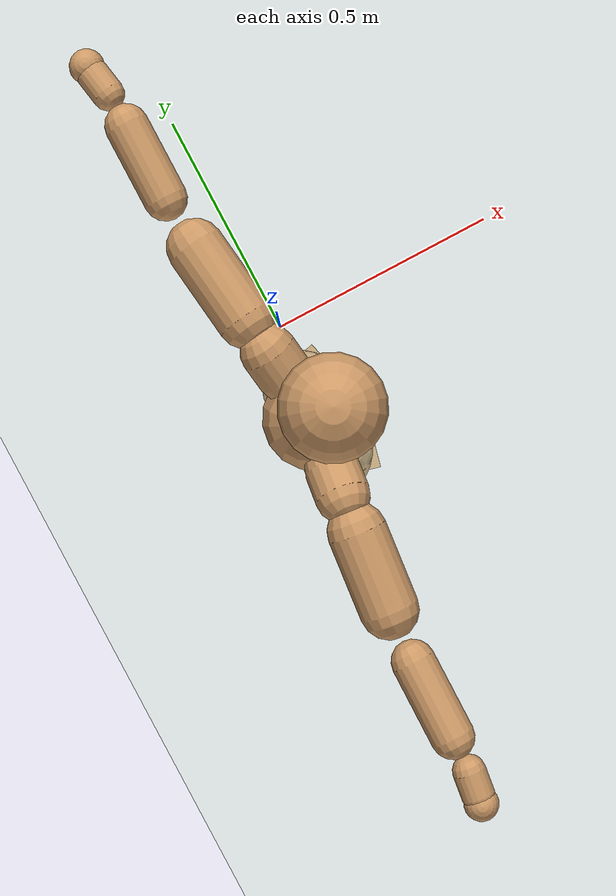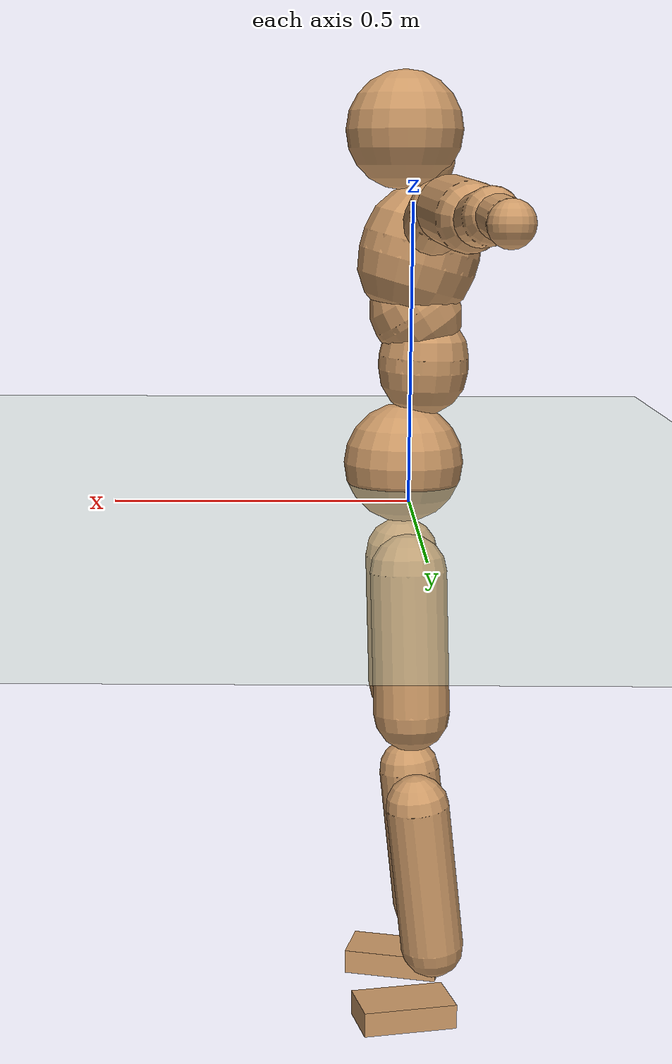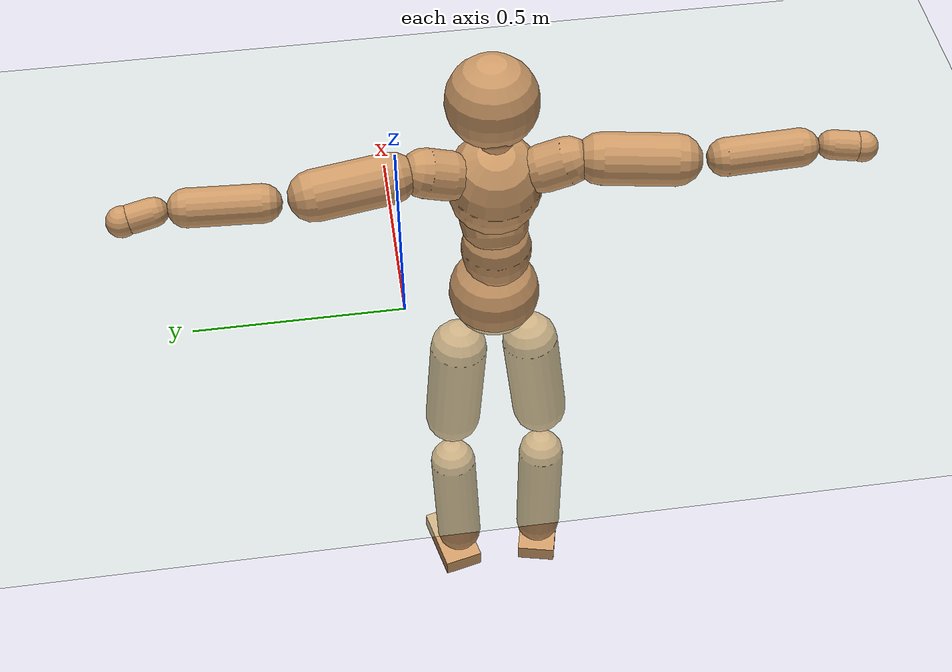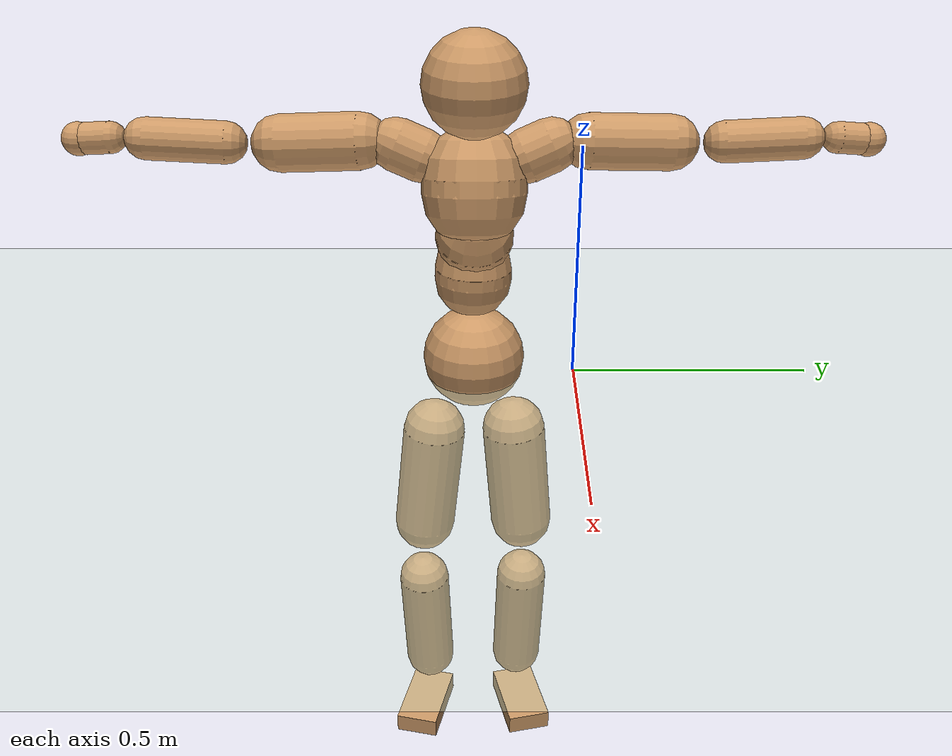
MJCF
<mujoco model="humanoid">
  <compiler coordinate="local" angle="radian"/>
  <default>
    <joint damping="0.0" armature="0.01" stiffness="0.0" limited="true"/>
    <geom conaffinity="1" condim="3" contype="7" margin="0.001" rgba="0.8 0.6 .4 1"/>
  </default>
  <asset>
    <texture type="skybox" builtin="gradient" rgb1=".4 .5 .6" rgb2="0 0 0" width="100" height="100"/>
    <texture builtin="flat" height="1278" mark="cross" markrgb="1 1 1" name="texgeom" random="0.01" rgb1="0.8 0.6 0.4" rgb2="0.8 0.6 0.4" type="cube" width="127"/>
    <texture builtin="checker" height="100" name="texplane" rgb1="0 0 0" rgb2="0.8 0.8 0.8" type="2d" width="100"/>
    <material name="MatPlane" reflectance="0.5" shininess="1" specular="1" texrepeat="60 60" texture="texplane"/>
    <material name="geom" texture="texgeom" texuniform="true"/>
  </asset>
  <worldbody>
    <light cutoff="100" diffuse="1 1 1" dir="-0 0 -1.3" directional="true" exponent="1" pos="0 0 1.3" specular=".1 .1 .1"/>
    <geom conaffinity="1" condim="3" name="floor" pos="0 0 0" rgba="0.8 0.9 0.8 1" size="100 100 .2" type="plane" material="MatPlane"/>
    <body name="Pelvis" pos="-0.0003 -0.2135 0.0356">
      <freejoint name="Pelvis"/>
      <geom type="sphere" contype="1" conaffinity="1" density="500" size="0.1077" pos="0.0000 0.0000 0.0000" name="Pelvis"/>
      <body name="L_Hip" pos="-0.0046 0.0816 -0.0998">
        <joint name="L_Hip_x" type="hinge" pos="0 0 0" axis="1 0 0" stiffness="800" damping="80" armature="0.02" range="-180.0000 180.0000"/>
        <joint name="L_Hip_y" type="hinge" pos="0 0 0" axis="0 1 0" stiffness="800" damping="80" armature="0.02" range="-180.0000 180.0000"/>
        <joint name="L_Hip_z" type="hinge" pos="0 0 0" axis="0 0 1" stiffness="800" damping="80" armature="0.02" range="-180.0000 180.0000"/>
        <geom type="capsule" contype="1" conaffinity="1" density="500" fromto="-0.0027 0.0071 -0.0850 -0.0109 0.0283 -0.3399" size="0.0689" name="L_Hip"/>
        <body name="L_Knee" pos="-0.0136 0.0354 -0.4249">
          <joint name="L_Knee_x" type="hinge" pos="0 0 0" axis="1 0 0" stiffness="800" damping="80" armature="0.02" range="-180.0000 180.0000"/>
          <joint name="L_Knee_y" type="hinge" pos="0 0 0" axis="0 1 0" stiffness="800" damping="80" armature="0.02" range="-180.0000 180.0000"/>
          <joint name="L_Knee_z" type="hinge" pos="0 0 0" axis="0 0 1" stiffness="800" damping="80" armature="0.02" range="-180.0000 180.0000"/>
          <geom type="capsule" contype="1" conaffinity="1" density="500" fromto="-0.0105 -0.0024 -0.0910 -0.0421 -0.0095 -0.3640" size="0.0581" name="L_Knee"/>
          <body name="L_Ankle" pos="-0.0526 -0.0118 -0.4549">
            <joint name="L_Ankle_x" type="hinge" pos="0 0 0" axis="1 0 0" stiffness="800" damping="80" armature="0.02" range="-180.0000 180.0000"/>
            <joint name="L_Ankle_y" type="hinge" pos="0 0 0" axis="0 1 0" stiffness="800" damping="80" armature="0.02" range="-180.0000 180.0000"/>
            <joint name="L_Ankle_z" type="hinge" pos="0 0 0" axis="0 0 1" stiffness="800" damping="80" armature="0.02" range="-180.0000 180.0000"/>
            <geom type="box" contype="1" conaffinity="1" density="500" pos="0.0619 0.0143 -0.0319" size="0.0876 0.0501 0.023" quat="0.9935 0.0000 0.0000 0.1135" name="L_Ankle"/>
            <body name="L_Toe" pos="0.1238 0.0286 -0.0638">
              <joint name="L_Toe_x" type="hinge" pos="0 0 0" axis="1 0 0" stiffness="500" damping="50" armature="0.02" range="-180.0000 180.0000"/>
              <joint name="L_Toe_y" type="hinge" pos="0 0 0" axis="0 1 0" stiffness="500" damping="50" armature="0.02" range="-180.0000 180.0000"/>
              <joint name="L_Toe_z" type="hinge" pos="0 0 0" axis="0 0 1" stiffness="500" damping="50" armature="0.02" range="-180.0000 180.0000"/>
              <geom type="box" contype="1" conaffinity="1" density="500" pos="0.0000 0.0000 0.0318" size="0.001 0.0025 0.0011" quat="0.9929 0.0000 0.0000 0.1192" name="L_Toe"/>
            </body>
          </body>
        </body>
      </body>
      <body name="R_Hip" pos="-0.0003 -0.0789 -0.1">
        <joint name="R_Hip_x" type="hinge" pos="0 0 0" axis="1 0 0" stiffness="800" damping="80" armature="0.02" range="-180.0000 180.0000"/>
        <joint name="R_Hip_y" type="hinge" pos="0 0 0" axis="0 1 0" stiffness="800" damping="80" armature="0.02" range="-180.0000 180.0000"/>
        <joint name="R_Hip_z" type="hinge" pos="0 0 0" axis="0 0 1" stiffness="800" damping="80" armature="0.02" range="-180.0000 180.0000"/>
        <geom type="capsule" contype="1" conaffinity="1" density="500" fromto="-0.0032 -0.0088 -0.0861 -0.0127 -0.0352 -0.3444" size="0.0679" name="R_Hip"/>
        <body name="R_Knee" pos="-0.0158 -0.044 -0.4305">
          <joint name="R_Knee_x" type="hinge" pos="0 0 0" axis="1 0 0" stiffness="800" damping="80" armature="0.02" range="-180.0000 180.0000"/>
          <joint name="R_Knee_y" type="hinge" pos="0 0 0" axis="0 1 0" stiffness="800" damping="80" armature="0.02" range="-180.0000 180.0000"/>
          <joint name="R_Knee_z" type="hinge" pos="0 0 0" axis="0 0 1" stiffness="800" damping="80" armature="0.02" range="-180.0000 180.0000"/>
          <geom type="capsule" contype="1" conaffinity="1" density="500" fromto="-0.0100 0.0030 -0.0912 -0.0402 0.0120 -0.3647" size="0.0581" name="R_Knee"/>
          <body name="R_Ankle" pos="-0.0502 0.015 -0.4559">
            <joint name="R_Ankle_x" type="hinge" pos="0 0 0" axis="1 0 0" stiffness="800" damping="80" armature="0.02" range="-180.0000 180.0000"/>
            <joint name="R_Ankle_y" type="hinge" pos="0 0 0" axis="0 1 0" stiffness="800" damping="80" armature="0.02" range="-180.0000 180.0000"/>
            <joint name="R_Ankle_z" type="hinge" pos="0 0 0" axis="0 0 1" stiffness="800" damping="80" armature="0.02" range="-180.0000 180.0000"/>
            <geom type="box" contype="1" conaffinity="1" density="500" pos="0.0641 -0.0150 -0.0276" size="0.0897 0.0495 0.0229" quat="0.9934 0.0000 0.0000 -0.1151" name="R_Ankle"/>
            <body name="R_Toe" pos="0.1281 -0.0301 -0.0552">
              <joint name="R_Toe_x" type="hinge" pos="0 0 0" axis="1 0 0" stiffness="500" damping="50" armature="0.02" range="-180.0000 180.0000"/>
              <joint name="R_Toe_y" type="hinge" pos="0 0 0" axis="0 1 0" stiffness="500" damping="50" armature="0.02" range="-180.0000 180.0000"/>
              <joint name="R_Toe_z" type="hinge" pos="0 0 0" axis="0 0 1" stiffness="500" damping="50" armature="0.02" range="-180.0000 180.0000"/>
              <geom type="box" contype="1" conaffinity="1" density="500" pos="0.0000 0.0000 0.0298" size="0.0009 0.0024 0.0013" quat="0.9944 0.0000 0.0000 -0.1061" name="R_Toe"/>
            </body>
          </body>
        </body>
      </body>
      <body name="Torso" pos="-0.031 -0.0028 0.1152">
        <joint name="Torso_x" type="hinge" pos="0 0 0" axis="1 0 0" stiffness="1000" damping="100" armature="0.02" range="-180.0000 180.0000"/>
        <joint name="Torso_y" type="hinge" pos="0 0 0" axis="0 1 0" stiffness="1000" damping="100" armature="0.02" range="-180.0000 180.0000"/>
        <joint name="Torso_z" type="hinge" pos="0 0 0" axis="0 0 1" stiffness="1000" damping="100" armature="0.02" range="-180.0000 180.0000"/>
        <geom type="capsule" contype="1" conaffinity="1" density="500" fromto="-0.0027 0.0021 0.0767 -0.0018 0.0014 0.0512" size="0.0805" name="Torso"/>
        <body name="Spine" pos="-0.0045 0.0035 0.1279">
          <joint name="Spine_x" type="hinge" pos="0 0 0" axis="1 0 0" stiffness="1000" damping="100" armature="0.02" range="-180.0000 180.0000"/>
          <joint name="Spine_y" type="hinge" pos="0 0 0" axis="0 1 0" stiffness="1000" damping="100" armature="0.02" range="-180.0000 180.0000"/>
          <joint name="Spine_z" type="hinge" pos="0 0 0" axis="0 0 1" stiffness="1000" damping="100" armature="0.02" range="-180.0000 180.0000"/>
          <geom type="capsule" contype="1" conaffinity="1" density="500" fromto="0.0207 0.0009 0.0310 0.0138 0.0006 0.0207" size="0.0804" name="Spine"/>
          <body name="Chest" pos="0.0344 0.0015 0.0517">
            <joint name="Chest_x" type="hinge" pos="0 0 0" axis="1 0 0" stiffness="1000" damping="100" armature="0.02" range="-180.0000 180.0000"/>
            <joint name="Chest_y" type="hinge" pos="0 0 0" axis="0 1 0" stiffness="1000" damping="100" armature="0.02" range="-180.0000 180.0000"/>
            <joint name="Chest_z" type="hinge" pos="0 0 0" axis="0 0 1" stiffness="1000" damping="100" armature="0.02" range="-180.0000 180.0000"/>
            <geom type="capsule" contype="1" conaffinity="1" density="500" fromto="-0.0265 -0.0007 0.0951 -0.0177 -0.0005 0.0634" size="0.1066" name="Chest"/>
            <body name="Neck" pos="-0.0488 -0.0025 0.2246">
              <joint name="Neck_x" type="hinge" pos="0 0 0" axis="1 0 0" stiffness="500" damping="50" armature="0.02" range="-180.0000 180.0000"/>
              <joint name="Neck_y" type="hinge" pos="0 0 0" axis="0 1 0" stiffness="500" damping="50" armature="0.02" range="-180.0000 180.0000"/>
              <joint name="Neck_z" type="hinge" pos="0 0 0" axis="0 0 1" stiffness="500" damping="50" armature="0.02" range="-180.0000 180.0000"/>
              <geom type="capsule" contype="1" conaffinity="1" density="500" fromto="0.0111 0.0004 0.0134 0.0446 0.0014 0.0537" size="0.0443" name="Neck"/>
              <body name="Head" pos="0.0557 0.0018 0.0672">
                <joint name="Head_x" type="hinge" pos="0 0 0" axis="1 0 0" stiffness="500" damping="50" armature="0.02" range="-180.0000 180.0000"/>
                <joint name="Head_y" type="hinge" pos="0 0 0" axis="0 1 0" stiffness="500" damping="50" armature="0.02" range="-180.0000 180.0000"/>
                <joint name="Head_z" type="hinge" pos="0 0 0" axis="0 0 1" stiffness="500" damping="50" armature="0.02" range="-180.0000 180.0000"/>
                <geom type="sphere" contype="1" conaffinity="1" density="500" size="0.1033" pos="0.0000 0.0000 0.0000" name="Head"/>
              </body>
            </body>
            <body name="L_Thorax" pos="-0.0393 0.0835 0.1262">
              <joint name="L_Thorax_x" type="hinge" pos="0 0 0" axis="1 0 0" stiffness="500" damping="50" armature="0.02" range="-180.0000 180.0000"/>
              <joint name="L_Thorax_y" type="hinge" pos="0 0 0" axis="0 1 0" stiffness="500" damping="50" armature="0.02" range="-180.0000 180.0000"/>
              <joint name="L_Thorax_z" type="hinge" pos="0 0 0" axis="0 0 1" stiffness="500" damping="50" armature="0.02" range="-180.0000 180.0000"/>
              <geom type="capsule" contype="1" conaffinity="1" density="500" fromto="-0.0023 0.0175 0.0072 -0.0093 0.0699 0.0288" size="0.0551" name="L_Thorax"/>
              <body name="L_Shoulder" pos="-0.0116 0.0873 0.036">
                <joint name="L_Shoulder_x" type="hinge" pos="0 0 0" axis="1 0 0" stiffness="500" damping="50" armature="0.02" range="-720.0000 720.0000"/>
                <joint name="L_Shoulder_y" type="hinge" pos="0 0 0" axis="0 1 0" stiffness="500" damping="50" armature="0.02" range="-720.0000 720.0000"/>
                <joint name="L_Shoulder_z" type="hinge" pos="0 0 0" axis="0 0 1" stiffness="500" damping="50" armature="0.02" range="-720.0000 720.0000"/>
                <geom type="capsule" contype="1" conaffinity="1" density="500" fromto="-0.0068 0.0559 -0.0032 -0.0270 0.2236 -0.0129" size="0.0566" name="L_Shoulder"/>
                <body name="L_Elbow" pos="-0.0338 0.2796 -0.0162">
                  <joint name="L_Elbow_x" type="hinge" pos="0 0 0" axis="1 0 0" stiffness="500" damping="50" armature="0.02" range="-720.0000 720.0000"/>
                  <joint name="L_Elbow_y" type="hinge" pos="0 0 0" axis="0 1 0" stiffness="500" damping="50" armature="0.02" range="-720.0000 720.0000"/>
                  <joint name="L_Elbow_z" type="hinge" pos="0 0 0" axis="0 0 1" stiffness="500" damping="50" armature="0.02" range="-720.0000 720.0000"/>
                  <geom type="capsule" contype="1" conaffinity="1" density="500" fromto="0.0001 0.0525 0.0026 0.0005 0.2101 0.0105" size="0.0425" name="L_Elbow"/>
                  <body name="L_Wrist" pos="0.0006 0.2626 0.0131">
                    <joint name="L_Wrist_x" type="hinge" pos="0 0 0" axis="1 0 0" stiffness="300" damping="30" armature="0.02" range="-180.0000 180.0000"/>
                    <joint name="L_Wrist_y" type="hinge" pos="0 0 0" axis="0 1 0" stiffness="300" damping="30" armature="0.02" range="-180.0000 180.0000"/>
                    <joint name="L_Wrist_z" type="hinge" pos="0 0 0" axis="0 0 1" stiffness="300" damping="30" armature="0.02" range="-180.0000 180.0000"/>
                    <geom type="capsule" contype="1" conaffinity="1" density="500" fromto="-0.0028 0.0169 -0.0021 -0.0113 0.0675 -0.0083" size="0.0319" name="L_Wrist"/>
                    <body name="L_Hand" pos="-0.0141 0.0844 -0.0103">
                      <joint name="L_Hand_x" type="hinge" pos="0 0 0" axis="1 0 0" stiffness="300" damping="30" armature="0.02" range="-180.0000 180.0000"/>
                      <joint name="L_Hand_y" type="hinge" pos="0 0 0" axis="0 1 0" stiffness="300" damping="30" armature="0.02" range="-180.0000 180.0000"/>
                      <joint name="L_Hand_z" type="hinge" pos="0 0 0" axis="0 0 1" stiffness="300" damping="30" armature="0.02" range="-180.0000 180.0000"/>
                      <geom type="sphere" contype="1" conaffinity="1" density="500" size="0.0341" pos="0.0000 0.0000 0.0000" name="L_Hand"/>
                    </body>
                  </body>
                </body>
              </body>
            </body>
            <body name="R_Thorax" pos="-0.0444 -0.0847 0.1248">
              <joint name="R_Thorax_x" type="hinge" pos="0 0 0" axis="1 0 0" stiffness="500" damping="50" armature="0.02" range="-180.0000 180.0000"/>
              <joint name="R_Thorax_y" type="hinge" pos="0 0 0" axis="0 1 0" stiffness="500" damping="50" armature="0.02" range="-180.0000 180.0000"/>
              <joint name="R_Thorax_z" type="hinge" pos="0 0 0" axis="0 0 1" stiffness="500" damping="50" armature="0.02" range="-180.0000 180.0000"/>
              <geom type="capsule" contype="1" conaffinity="1" density="500" fromto="-0.0021 -0.0180 0.0074 -0.0086 -0.0722 0.0296" size="0.054" name="R_Thorax"/>
              <body name="R_Shoulder" pos="-0.0107 -0.0902 0.0371">
                <joint name="R_Shoulder_x" type="hinge" pos="0 0 0" axis="1 0 0" stiffness="500" damping="50" armature="0.02" range="-720.0000 720.0000"/>
                <joint name="R_Shoulder_y" type="hinge" pos="0 0 0" axis="0 1 0" stiffness="500" damping="50" armature="0.02" range="-720.0000 720.0000"/>
                <joint name="R_Shoulder_z" type="hinge" pos="0 0 0" axis="0 0 1" stiffness="500" damping="50" armature="0.02" range="-720.0000 720.0000"/>
                <geom type="capsule" contype="1" conaffinity="1" density="500" fromto="-0.0055 -0.0542 -0.0034 -0.0219 -0.2168 -0.0137" size="0.0581" name="R_Shoulder"/>
                <body name="R_Elbow" pos="-0.0274 -0.2711 -0.0171">
                  <joint name="R_Elbow_x" type="hinge" pos="0 0 0" axis="1 0 0" stiffness="500" damping="50" armature="0.02" range="-720.0000 720.0000"/>
                  <joint name="R_Elbow_y" type="hinge" pos="0 0 0" axis="0 1 0" stiffness="500" damping="50" armature="0.02" range="-720.0000 720.0000"/>
                  <joint name="R_Elbow_z" type="hinge" pos="0 0 0" axis="0 0 1" stiffness="500" damping="50" armature="0.02" range="-720.0000 720.0000"/>
                  <geom type="capsule" contype="1" conaffinity="1" density="500" fromto="-0.0004 -0.0541 0.0027 -0.0017 -0.2165 0.0109" size="0.0429" name="R_Elbow"/>
                  <body name="R_Wrist" pos="-0.0022 -0.2706 0.0137">
                    <joint name="R_Wrist_x" type="hinge" pos="0 0 0" axis="1 0 0" stiffness="300" damping="30" armature="0.02" range="-180.0000 180.0000"/>
                    <joint name="R_Wrist_y" type="hinge" pos="0 0 0" axis="0 1 0" stiffness="300" damping="30" armature="0.02" range="-180.0000 180.0000"/>
                    <joint name="R_Wrist_z" type="hinge" pos="0 0 0" axis="0 0 1" stiffness="300" damping="30" armature="0.02" range="-180.0000 180.0000"/>
                    <geom type="capsule" contype="1" conaffinity="1" density="500" fromto="-0.0022 -0.0169 -0.0015 -0.0089 -0.0677 -0.0061" size="0.0326" name="R_Wrist"/>
                    <body name="R_Hand" pos="-0.0111 -0.0846 -0.0076">
                      <joint name="R_Hand_x" type="hinge" pos="0 0 0" axis="1 0 0" stiffness="300" damping="30" armature="0.02" range="-180.0000 180.0000"/>
                      <joint name="R_Hand_y" type="hinge" pos="0 0 0" axis="0 1 0" stiffness="300" damping="30" armature="0.02" range="-180.0000 180.0000"/>
                      <joint name="R_Hand_z" type="hinge" pos="0 0 0" axis="0 0 1" stiffness="300" damping="30" armature="0.02" range="-180.0000 180.0000"/>
                      <geom type="sphere" contype="1" conaffinity="1" density="500" size="0.0341" pos="0.0000 0.0000 0.0000" name="R_Hand"/>
                    </body>
                  </body>
                </body>
              </body>
            </body>
          </body>
        </body>
      </body>
    </body>
  </worldbody>
  <actuator>
    <motor name="L_Hip_x" joint="L_Hip_x" gear="500"/>
    <motor name="L_Hip_y" joint="L_Hip_y" gear="500"/>
    <motor name="L_Hip_z" joint="L_Hip_z" gear="500"/>
    <motor name="L_Knee_x" joint="L_Knee_x" gear="500"/>
    <motor name="L_Knee_y" joint="L_Knee_y" gear="500"/>
    <motor name="L_Knee_z" joint="L_Knee_z" gear="500"/>
    <motor name="L_Ankle_x" joint="L_Ankle_x" gear="500"/>
    <motor name="L_Ankle_y" joint="L_Ankle_y" gear="500"/>
    <motor name="L_Ankle_z" joint="L_Ankle_z" gear="500"/>
    <motor name="L_Toe_x" joint="L_Toe_x" gear="500"/>
    <motor name="L_Toe_y" joint="L_Toe_y" gear="500"/>
    <motor name="L_Toe_z" joint="L_Toe_z" gear="500"/>
    <motor name="R_Hip_x" joint="R_Hip_x" gear="500"/>
    <motor name="R_Hip_y" joint="R_Hip_y" gear="500"/>
    <motor name="R_Hip_z" joint="R_Hip_z" gear="500"/>
    <motor name="R_Knee_x" joint="R_Knee_x" gear="500"/>
    <motor name="R_Knee_y" joint="R_Knee_y" gear="500"/>
    <motor name="R_Knee_z" joint="R_Knee_z" gear="500"/>
    <motor name="R_Ankle_x" joint="R_Ankle_x" gear="500"/>
    <motor name="R_Ankle_y" joint="R_Ankle_y" gear="500"/>
    <motor name="R_Ankle_z" joint="R_Ankle_z" gear="500"/>
    <motor name="R_Toe_x" joint="R_Toe_x" gear="500"/>
    <motor name="R_Toe_y" joint="R_Toe_y" gear="500"/>
    <motor name="R_Toe_z" joint="R_Toe_z" gear="500"/>
    <motor name="Torso_x" joint="Torso_x" gear="500"/>
    <motor name="Torso_y" joint="Torso_y" gear="500"/>
    <motor name="Torso_z" joint="Torso_z" gear="500"/>
    <motor name="Spine_x" joint="Spine_x" gear="500"/>
    <motor name="Spine_y" joint="Spine_y" gear="500"/>
    <motor name="Spine_z" joint="Spine_z" gear="500"/>
    <motor name="Chest_x" joint="Chest_x" gear="500"/>
    <motor name="Chest_y" joint="Chest_y" gear="500"/>
    <motor name="Chest_z" joint="Chest_z" gear="500"/>
    <motor name="Neck_x" joint="Neck_x" gear="500"/>
    <motor name="Neck_y" joint="Neck_y" gear="500"/>
    <motor name="Neck_z" joint="Neck_z" gear="500"/>
    <motor name="Head_x" joint="Head_x" gear="500"/>
    <motor name="Head_y" joint="Head_y" gear="500"/>
    <motor name="Head_z" joint="Head_z" gear="500"/>
    <motor name="L_Thorax_x" joint="L_Thorax_x" gear="500"/>
    <motor name="L_Thorax_y" joint="L_Thorax_y" gear="500"/>
    <motor name="L_Thorax_z" joint="L_Thorax_z" gear="500"/>
    <motor name="L_Shoulder_x" joint="L_Shoulder_x" gear="500"/>
    <motor name="L_Shoulder_y" joint="L_Shoulder_y" gear="500"/>
    <motor name="L_Shoulder_z" joint="L_Shoulder_z" gear="500"/>
    <motor name="L_Elbow_x" joint="L_Elbow_x" gear="500"/>
    <motor name="L_Elbow_y" joint="L_Elbow_y" gear="500"/>
    <motor name="L_Elbow_z" joint="L_Elbow_z" gear="500"/>
    <motor name="L_Wrist_x" joint="L_Wrist_x" gear="500"/>
    <motor name="L_Wrist_y" joint="L_Wrist_y" gear="500"/>
    <motor name="L_Wrist_z" joint="L_Wrist_z" gear="500"/>
    <motor name="L_Hand_x" joint="L_Hand_x" gear="500"/>
    <motor name="L_Hand_y" joint="L_Hand_y" gear="500"/>
    <motor name="L_Hand_z" joint="L_Hand_z" gear="500"/>
    <motor name="R_Thorax_x" joint="R_Thorax_x" gear="500"/>
    <motor name="R_Thorax_y" joint="R_Thorax_y" gear="500"/>
    <motor name="R_Thorax_z" joint="R_Thorax_z" gear="500"/>
    <motor name="R_Shoulder_x" joint="R_Shoulder_x" gear="500"/>
    <motor name="R_Shoulder_y" joint="R_Shoulder_y" gear="500"/>
    <motor name="R_Shoulder_z" joint="R_Shoulder_z" gear="500"/>
    <motor name="R_Elbow_x" joint="R_Elbow_x" gear="500"/>
    <motor name="R_Elbow_y" joint="R_Elbow_y" gear="500"/>
    <motor name="R_Elbow_z" joint="R_Elbow_z" gear="500"/>
    <motor name="R_Wrist_x" joint="R_Wrist_x" gear="500"/>
    <motor name="R_Wrist_y" joint="R_Wrist_y" gear="500"/>
    <motor name="R_Wrist_z" joint="R_Wrist_z" gear="500"/>
    <motor name="R_Hand_x" joint="R_Hand_x" gear="500"/>
    <motor name="R_Hand_y" joint="R_Hand_y" gear="500"/>
    <motor name="R_Hand_z" joint="R_Hand_z" gear="500"/>
  </actuator>
  <contact>
    <exclude body1="Torso" body2="Chest"/>
    <exclude body1="Head" body2="Chest"/>
    <exclude body1="R_Knee" body2="R_Toe"/>
    <exclude body1="R_Knee" body2="L_Ankle"/>
    <exclude body1="R_Knee" body2="L_Toe"/>
    <exclude body1="L_Knee" body2="L_Toe"/>
    <exclude body1="L_Knee" body2="R_Ankle"/>
    <exclude body1="L_Knee" body2="R_Toe"/>
    <exclude body1="L_Shoulder" body2="Chest"/>
    <exclude body1="R_Shoulder" body2="Chest"/>
  </contact>
  <sensor/>
  <size njmax="700" nconmax="700"/>
</mujoco>
